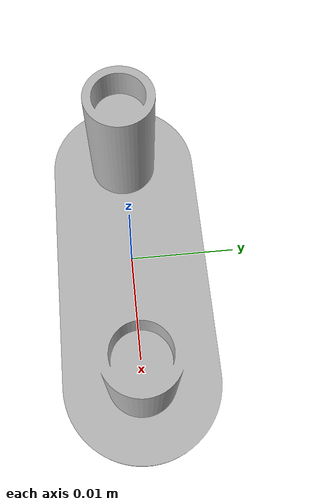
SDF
<?xml version="1.0" ?>
<sdf version="1.5">
  <model name="bottom_casing">
    <static>false</static>
    <link name="link">
      <visual name="visual">
        <geometry>
          <mesh>
            <scale>1 1 1</scale>
            <uri>model://Fidget/bottom_casing/meshes/bottom_casing.dae</uri>
          </mesh>
        </geometry>
      </visual>
    </link>
  </model>
</sdf>
